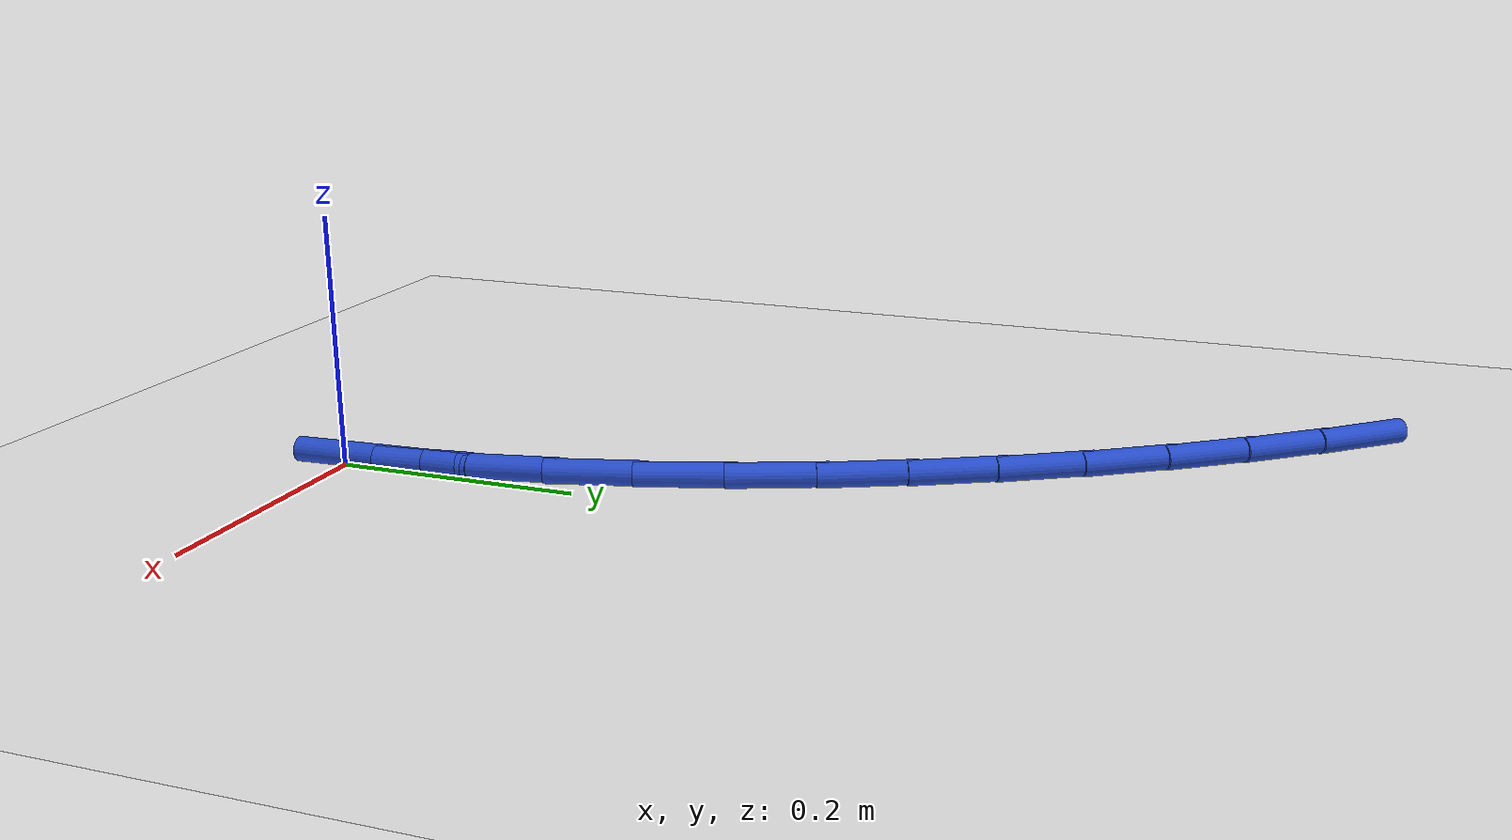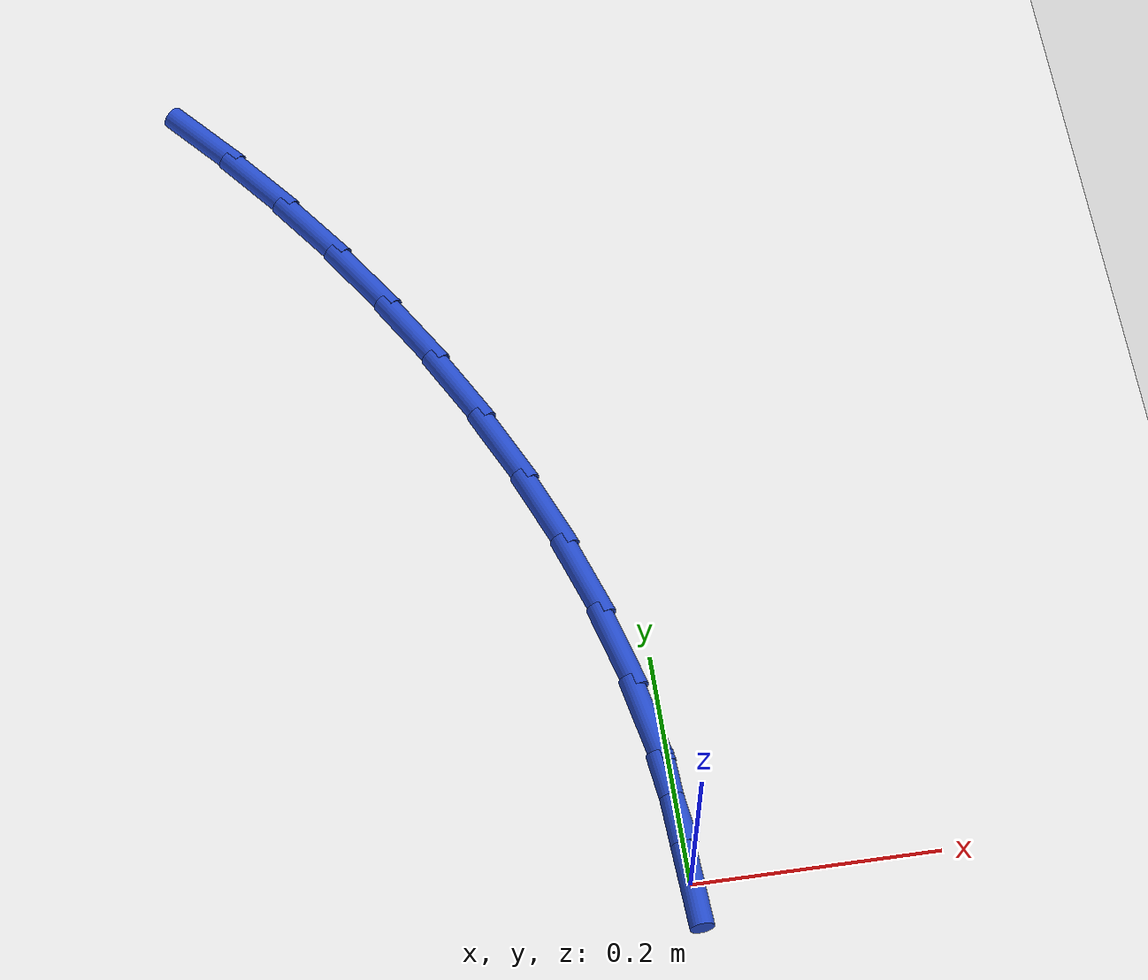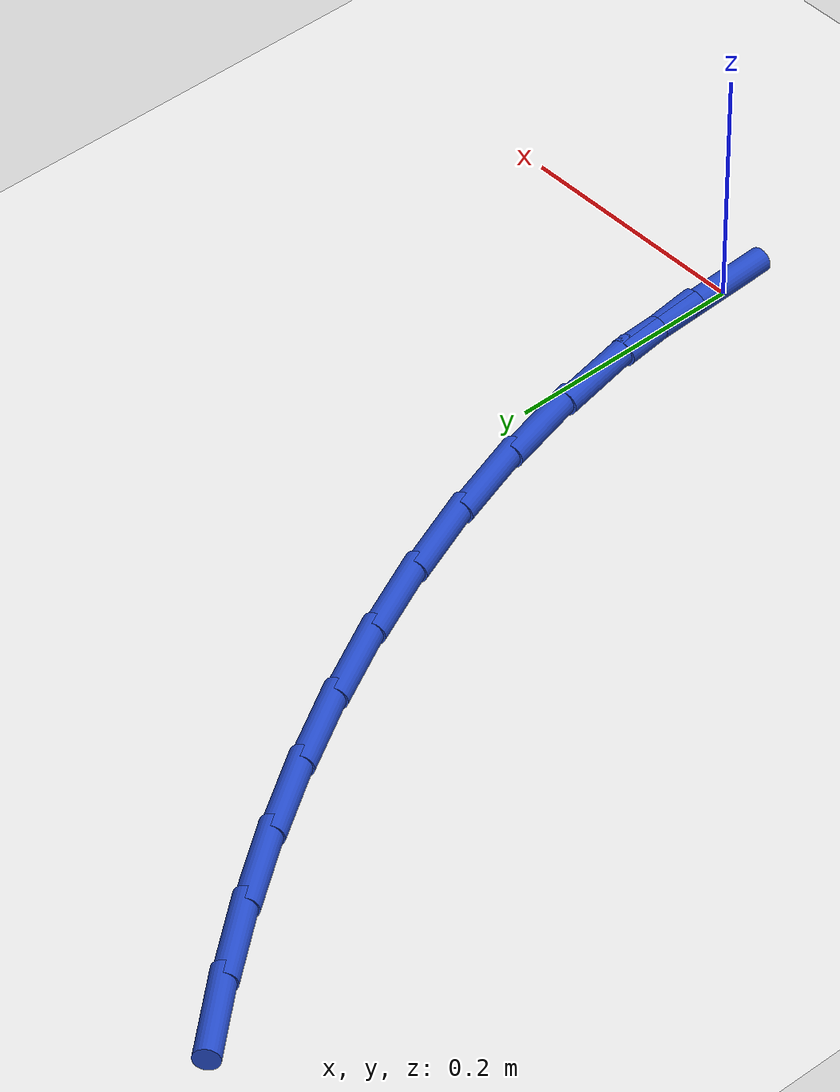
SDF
<sdf version="1.6">
 <world name="default">
  <model name="ground_plane">
   <static>1</static>
   <link name="link">
    <collision name="collision">
     <geometry><plane><normal>0 0 1</normal><size>100 100</size></plane></geometry>
     <surface><friction><ode><mu>100</mu><mu2>50</mu2></ode></friction></surface>
    </collision>
    <visual name="visual">
     <cast_shadows>0</cast_shadows>
     <geometry><plane><normal>0 0 1</normal><size>100 100</size></plane></geometry>
     <material>
      <script><uri>file://media/materials/scripts/gazebo.material</uri><name>Gazebo/WhiteGlow</name></script>
     </material>
    </visual>
   </link>
  </model>
  <model name="line">
   <link name="link_1">
    <pose>-0.0034385464268647695 0.07003162482844509 0.01 0 1.57 -1.4475627418657857</pose>
    <collision name="collision">
     <geometry><cylinder><radius>0.01</radius><length>0.08</length></cylinder></geometry>
    </collision>
    <visual name="visual">
     <material>
      <script><name>Gazebo/Blue</name><uri>file://media/materials/scripts/gazebo.material</uri></script>
     </material>
     <geometry><cylinder><radius>0.01</radius><length>0.08</length></cylinder></geometry>
    </visual>
   </link>
   <link name="link_2">
    <pose>-0.01202970652646564 0.13939279839674354 0.01 0 1.57 -1.377469032141034</pose>
    <collision name="collision">
     <geometry><cylinder><radius>0.01</radius><length>0.08</length></cylinder></geometry>
    </collision>
    <visual name="visual">
     <material>
      <script><name>Gazebo/Blue</name><uri>file://media/materials/scripts/gazebo.material</uri></script>
     </material>
     <geometry><cylinder><radius>0.01</radius><length>0.08</length></cylinder></geometry>
    </visual>
   </link>
   <link name="link_3">
    <pose>-0.02543975281208585 0.2078909363914081 0.01 0 1.57 -1.3114328326996076</pose>
    <collision name="collision">
     <geometry><cylinder><radius>0.01</radius><length>0.08</length></cylinder></geometry>
    </collision>
    <visual name="visual">
     <material>
      <script><name>Gazebo/Blue</name><uri>file://media/materials/scripts/gazebo.material</uri></script>
     </material>
     <geometry><cylinder><radius>0.01</radius><length>0.08</length></cylinder></geometry>
    </visual>
   </link>
   <link name="link_4">
    <pose>-0.04333495779700869 0.2753334544989513 0.01 0 1.57 -1.2492923636024742</pose>
    <collision name="collision">
     <geometry><cylinder><radius>0.01</radius><length>0.08</length></cylinder></geometry>
    </collision>
    <visual name="visual">
     <material>
      <script><name>Gazebo/Blue</name><uri>file://media/materials/scripts/gazebo.material</uri></script>
     </material>
     <geometry><cylinder><radius>0.01</radius><length>0.08</length></cylinder></geometry>
    </visual>
   </link>
   <link name="link_5">
    <pose>-0.06538159399451748 0.34152776840588583 0.01 0 1.57 -1.190783566131937</pose>
    <collision name="collision">
     <geometry><cylinder><radius>0.01</radius><length>0.08</length></cylinder></geometry>
    </collision>
    <visual name="visual">
     <material>
      <script><name>Gazebo/Blue</name><uri>file://media/materials/scripts/gazebo.material</uri></script>
     </material>
     <geometry><cylinder><radius>0.01</radius><length>0.08</length></cylinder></geometry>
    </visual>
   </link>
   <link name="link_6">
    <pose>-0.09124593391789546 0.4062812937987242 0.01 0 1.57 -1.1355719335534222</pose>
    <collision name="collision">
     <geometry><cylinder><radius>0.01</radius><length>0.08</length></cylinder></geometry>
    </collision>
    <visual name="visual">
     <material>
      <script><name>Gazebo/Blue</name><uri>file://media/materials/scripts/gazebo.material</uri></script>
     </material>
     <geometry><cylinder><radius>0.01</radius><length>0.08</length></cylinder></geometry>
    </visual>
   </link>
   <link name="link_7">
    <pose>-0.12059425008042601 0.4694014463639792 0.01 0 1.57 -1.083276748919488</pose>
    <collision name="collision">
     <geometry><cylinder><radius>0.01</radius><length>0.08</length></cylinder></geometry>
    </collision>
    <visual name="visual">
     <material>
      <script><name>Gazebo/Blue</name><uri>file://media/materials/scripts/gazebo.material</uri></script>
     </material>
     <geometry><cylinder><radius>0.01</radius><length>0.08</length></cylinder></geometry>
    </visual>
   </link>
   <link name="link_8">
    <pose>-0.15309281499539235 0.5306956417881632 0.01 0 1.57 -1.0334308532465695</pose>
    <collision name="collision">
     <geometry><cylinder><radius>0.01</radius><length>0.08</length></cylinder></geometry>
    </collision>
    <visual name="visual">
     <material>
      <script><name>Gazebo/Blue</name><uri>file://media/materials/scripts/gazebo.material</uri></script>
     </material>
     <geometry><cylinder><radius>0.01</radius><length>0.08</length></cylinder></geometry>
    </visual>
   </link>
   <link name="link_9">
    <pose>-0.18842804181321865 0.5899974513371844 0.01 0 1.57 -0.9854452054561046</pose>
    <collision name="collision">
     <geometry><cylinder><radius>0.01</radius><length>0.08</length></cylinder></geometry>
    </collision>
    <visual name="visual">
     <material>
      <script><name>Gazebo/Blue</name><uri>file://media/materials/scripts/gazebo.material</uri></script>
     </material>
     <geometry><cylinder><radius>0.01</radius><length>0.08</length></cylinder></geometry>
    </visual>
   </link>
   <link name="link_10">
    <pose>-0.22641968199439683 0.6473136056825368 0.01 0 1.57 -0.9393426360719739</pose>
    <collision name="collision">
     <geometry><cylinder><radius>0.01</radius><length>0.08</length></cylinder></geometry>
    </collision>
    <visual name="visual">
     <material>
      <script><name>Gazebo/Blue</name><uri>file://media/materials/scripts/gazebo.material</uri></script>
     </material>
     <geometry><cylinder><radius>0.01</radius><length>0.08</length></cylinder></geometry>
    </visual>
   </link>
   <link name="link_11">
    <pose>-0.2669416766492502 0.7027212087256509 0.01 0 1.57 -0.8953119648011286</pose>
    <collision name="collision">
     <geometry><cylinder><radius>0.01</radius><length>0.08</length></cylinder></geometry>
    </collision>
    <visual name="visual">
     <material>
      <script><name>Gazebo/Blue</name><uri>file://media/materials/scripts/gazebo.material</uri></script>
     </material>
     <geometry><cylinder><radius>0.01</radius><length>0.08</length></cylinder></geometry>
    </visual>
   </link>
   <link name="link_12">
    <pose>-0.30986812345255604 0.7562975676899257 0.01 0 1.57 -0.8534943147911593</pose>
    <collision name="collision">
     <geometry><cylinder><radius>0.01</radius><length>0.08</length></cylinder></geometry>
    </collision>
    <visual name="visual">
     <material>
      <script><name>Gazebo/Blue</name><uri>file://media/materials/scripts/gazebo.material</uri></script>
     </material>
     <geometry><cylinder><radius>0.01</radius><length>0.08</length></cylinder></geometry>
    </visual>
   </link>
   <link name="link_110">
    <pose>5.551115123125783e-17 1.5265566588595902e-16 0.01 0 1.57 -1.5204301441939954</pose>
    <collision name="collision">
     <geometry><cylinder><radius>0.01</radius><length>0.08</length></cylinder></geometry>
    </collision>
    <visual name="visual">
     <material>
      <script><name>Gazebo/Blue</name><uri>file://media/materials/scripts/gazebo.material</uri></script>
     </material>
     <geometry><cylinder><radius>0.01</radius><length>0.08</length></cylinder></geometry>
    </visual>
   </link>
   <link name="link_111">
    <pose>-0.003527261083231481 0.06997310101266972 0.01 0 1.57 -1.5204301441939958</pose>
    <collision name="collision">
     <geometry><cylinder><radius>0.01</radius><length>0.08</length></cylinder></geometry>
    </collision>
    <visual name="visual">
     <material>
      <script><name>Gazebo/Blue</name><uri>file://media/materials/scripts/gazebo.material</uri></script>
     </material>
     <geometry><cylinder><radius>0.01</radius><length>0.08</length></cylinder></geometry>
    </visual>
   </link>
  </model>
 </world>
</sdf>
